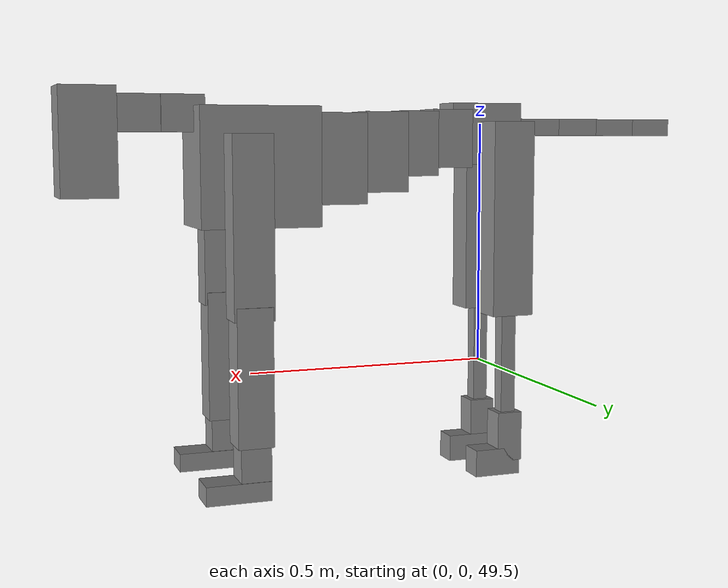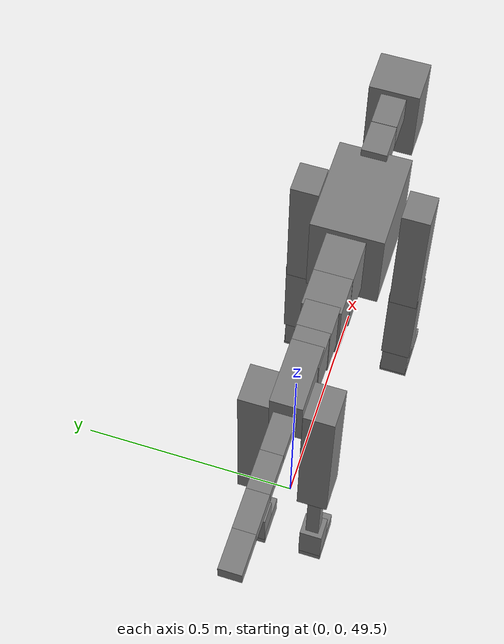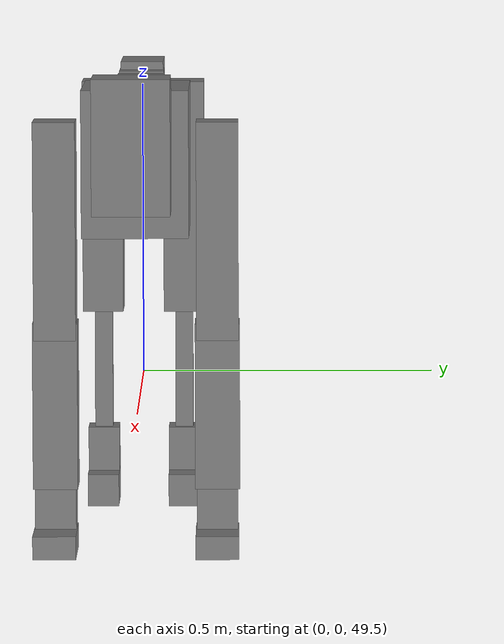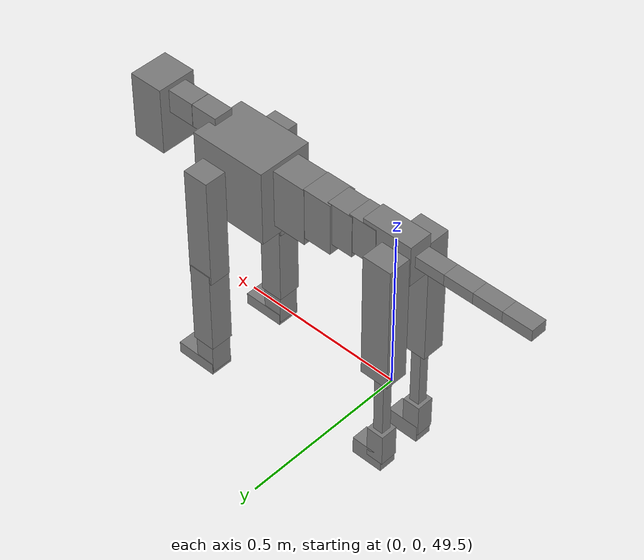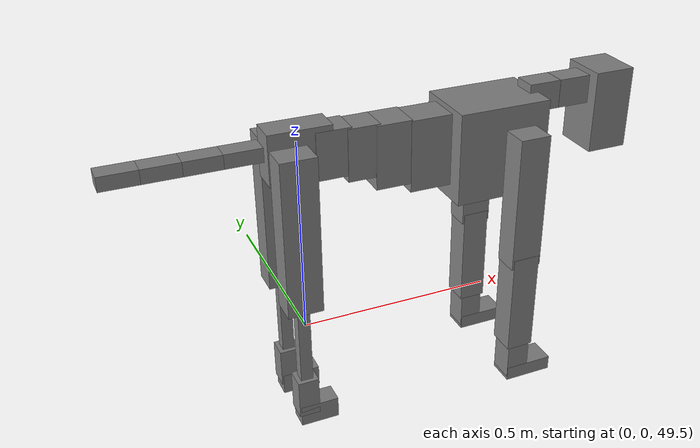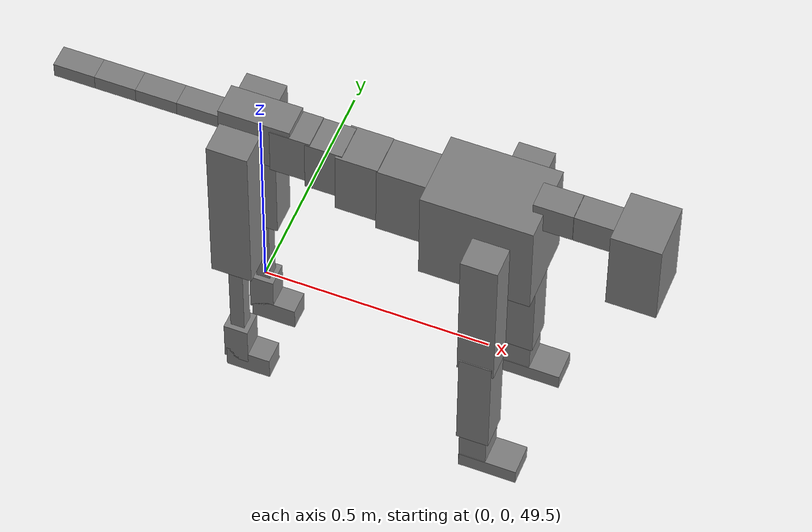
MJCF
<mujoco model="dog">

    <default>
        <joint armature="0.02" stiffness="1" damping="0.2" limited="true"/>
        <geom condim="3" friction="1 0.05 0.05" margin="0.01"/>
        <motor ctrllimited="true" ctrlrange="-1.0 1.0" forcelimited="true" gear="50"/>
    </default>

    <compiler inertiafromgeom="true" angle="radian"/>

    <option timestep="0.016" iterations="50" tolerance="1e-10" solver="Newton" jacobian="dense" cone="pyramidal"/>

    <size nconmax="20000" njmax="60000" nstack="5000000"/>
    <visual>
        <map force="0.1" zfar="30"/>
        <rgba haze="0.15 0.25 0.35 1"/>
        <quality shadowsize="2048"/>
        <global offwidth="800" offheight="800"/>
    </visual>

    <asset>
        <texture type="skybox" builtin="gradient" rgb1="0.3 0.5 0.7" rgb2="0 0 0" width="512" height="512"/>
        <texture name="texplane" type="2d" builtin="checker" rgb1=".2 .3 .4" rgb2=".1 0.15 0.2" width="512" height="512"
                 mark="cross" markrgb=".8 .8 .8"/>
        <texture name="texgeom" type="cube" builtin="flat" mark="cross" width="127" height="1278" rgb1="0.8 0.6 0.4"
                 rgb2="0.8 0.6 0.4" markrgb="1 1 1" random="0.01"/>

        <material name="matplane" reflectance="0.3" texture="texplane" texrepeat="1 1" texuniform="true"/>
        <material name="matgeom" texture="texgeom" texuniform="true" rgba="0.8 0.6 .4 1"/>
    </asset>

    <worldbody>
        <geom name="floor" pos="0 0 0" size="0 0 .25" type="plane" material="matplane" condim="3"/>

        <light directional="false" diffuse=".2 .2 .2" specular="0 0 0" pos="0 0 5" dir="0 0 -1" castshadow="false"/>
        <light mode="targetbodycom" target="torso" directional="false" diffuse=".8 .8 .8" specular="0.3 0.3 0.3"
               pos="0 0 4.0" dir="0 0 -1"/>

        <body name="root" pos="0 0 50">
            <freejoint name="root_1"/>
            <geom type="box" pos="0 0 -0.02" size="0.0774  0.0358  0.063" density="2030"/>

            <body name="spine1" pos="0.054 0 0">
                <joint name="spine1_y" axis="0 1 0" range="0 0.7" limited="true"/>
                <geom type="box" pos="0.02375 0 -0.03" size="0.04375  0.0375  0.05985" density="2030"/>

                <body name="spine2" pos="0.0612 0 0">
                    <joint name="spine2_y" axis="0 1 0" range="-0.15 0.15" limited="true"/>
                    <geom type="box" pos="0.03555  0  -0.04" size="0.04055  0.039  0.06615" density="2030"/>

                    <body name="spine3" pos="0.0730 0 0">
                        <joint name="spine3_y" axis="0 1 0" range="-0.15 0.15" limited="true"/>
                        <geom type="box" pos="0.03555  0  -0.057" size="0.04555  0.0445  0.081" density="2030"/>

                        <body name="spine4" pos="0.0780 0 0">
                            <joint name="spine4_y" axis="0 1 0" range="-0.15 0.15" limited="true"/>
                            <geom type="box" pos="0.05265  0  -0.07" size="0.05265  0.045  0.09135" density="2030"/>

                            <body name="torso" pos="0.1082 0 0">
                                <joint name="torso_y" axis="0 1 0" range="-0.15 0.15" limited="true"/>
                                <geom type="box" pos="0.11925  0  -0.085" size="0.11925  0.085  0.11745"
                                      density="2030"/>

                                <body name="neck1" pos="0.2160  0   0.0180">
                                    <joint name="neck1_y" axis="0 1 0" range="-1.2  -1" limited="true"/>
                                    <geom type="box" pos="0.0423  0  0" size="0.0423  0.03  0.036" density="2325"/>

                                    <body name="neck2" pos="0.0853  0  0">
                                        <joint name="neck2_y" axis="0 1 0" range="0.1  0" limited="true"/>
                                        <geom type="box" pos="0.0423  0  0" size="0.0423  0.03  0.036" density="2325"/>

                                        <body name="head" pos="0.0853  0  0">
                                            <joint name="head_y" axis="0 1 0" range="-0.3  -0.2" limited="true"/>
                                            <geom type="box" pos="0.0531  0  -0.055" size="0.0531  0.06  0.1044"
                                                  density="4030"/>

                                        </body>
                                    </body>
                                </body>

                                <body name="front_shoulder" pos="0.156  0   -0.0480">
                                    <joint name="front_shoulder_y" axis="0 1 0" range="-1 1.5" limited="true"/>
                                    <geom type="box" pos="0 0.13 -0.1481" size="0.0394  0.0337  0.1748" density="1158"/>
                                    <geom type="box" pos="0 -0.13 -0.1481" size="0.0394  0.0337  0.1748"
                                          density="1158"/>

                                    <body name="front_elbow" pos="0  0  -0.2963">
                                        <joint name="front_elbow_y" axis="0 1 0" range="-2 0" limited="true"/>
                                        <geom type="box" pos="0 0.13 -0.1338" size="0.0351  0.0359  0.1338"
                                              density="1081"/>
                                        <geom type="box" pos="0 -0.13 -0.1338" size="0.0351  0.0359  0.1338"
                                              density="1081"/>

                                        <body name="front_wrist" pos="0  0  -0.2676">
                                            <joint name="front_wrist_y" axis="0 1 0" range="-0.2 0" limited="true"/>
                                            <geom type="box" pos="0 0.13 -0.0403" size="0.0297  0.0330  0.0534"
                                                  density="1664"/>
                                            <geom type="box" pos="0 -0.13 -0.0403" size="0.0297  0.0330  0.0534"
                                                  density="1664"/>

                                            <body name="front_finger_end" pos="0  0  -0.0805">
                                                <joint name="front_finger_y" axis="0 1 0" range="-0.4 1"
                                                       limited="true"/>
                                                <geom type="box" pos="0.0345  0.13  -0.0038"
                                                      size="0.0633  0.0345  0.0188" density="1515"/>
                                                <geom type="box" pos="0.0345  -0.13  -0.0038"
                                                      size="0.0633  0.0345  0.0188" density="1515"/>

                                            </body>

                                        </body>
                                    </body>
                                </body>

                            </body>
                        </body>
                    </body>
                </body>
            </body>

            <body name="back_hip" pos="-0.03 0 -0.018">
                <joint name="back_hip_y" axis="0 1 0" range="-1.5 0.3" limited="true"/>
                <geom type="box" pos="0 0.07 -0.1767" size="0.0444  0.0348  0.1995" density="1154"/>
                <geom type="box" pos="0 -0.07 -0.1767" size="0.0444  0.0348  0.1995" density="1154"/>

                <body name="back_knee" pos="0  0  -0.3535">
                    <joint name="back_knee_y" axis="0 1 0" range="0 2.8" limited="true"/>
                    <geom type="box" pos="0 0.07 -0.1194" size="0.0156  0.0154  0.1350" density="1227"/>
                    <geom type="box" pos="0 -0.07 -0.1194" size="0.0156  0.0154  0.1350" density="1227"/>

                    <body name="back_ankle" pos="0  0  -0.2389">
                        <joint name="back_ankle_y" axis="0 1 0" range="-2.2 0" limited="true"/>
                        <geom type="box" pos="0 0.07 -0.0398" size="0.0267  0.0267  0.0510" density="1284"/>
                        <geom type="box" pos="0 -0.07 -0.0398" size="0.0267  0.0267  0.0510" density="1284"/>

                        <body name="back_toe_end" pos="0  0  -0.0795">
                            <joint name="back_toe_y" axis="0 1 0" range="-0.4 1" limited="true"/>
                            <geom type="box" pos="0.0267  0.07  -0.0128" size="0.0490  0.0267  0.0278" density="1515"/>
                            <geom type="box" pos="0.0267  -0.07  -0.0128" size="0.0490  0.0267  0.0278" density="1515"/>

                        </body>
                    </body>
                </body>
            </body>

            <body name="tail1" pos="-0.074 0 -0.006">
                <joint name="tail1_y" axis="0 1 0" range="-0.2 0.2" limited="true"/>
                <geom type="box" pos="-0.0536  0  0" size="0.045  0.025  0.0175" density="1587"/>

                <body name="tail2" pos="-0.09 0 0">
                    <joint name="tail2_y" axis="0 1 0" range="-0.2 0.2" limited="true"/>
                    <geom type="box" pos="-0.0536  0  0" size="0.045  0.025  0.0175" density="1587"/>

                    <body name="tail3" pos="-0.09 0 0">
                        <joint name="tail3_y" axis="0 1 0" range="-0.2 0.2" limited="true"/>
                        <geom type="box" pos="-0.0536  0  0" size="0.045  0.025  0.0175" density="1587"/>

                        <body name="tail4" pos="-0.09 0 0">
                            <joint name="tail4_y" axis="0 1 0" range="-0.2 0.2" limited="true"/>
                            <geom type="box" pos="-0.0536  0  0" size="0.045  0.025  0.0175" density="1587"/>

                        </body>
                    </body>
                </body>
            </body>
        </body>
    </worldbody>

    <actuator>
        <motor joint="spine1_y" forcerange="-150 150     "/>
        <motor joint="spine2_y" forcerange="-150 150     "/>
        <motor joint="spine3_y" forcerange="-150 150     "/>
        <motor joint="spine4_y" forcerange="-150 150     "/>
        <motor joint="torso_y" forcerange="-150 150     "/>
        <motor joint="neck1_y" forcerange="-100 100       "/>
        <motor joint="neck2_y" forcerange="-100 100       "/>
        <motor joint="head_y" forcerange="-150 150       "/>
        <motor joint="front_shoulder_y" forcerange="-134.08 190.69"/>
        <motor joint="front_elbow_y" forcerange="-163.85 197.46"/>
        <motor joint="front_wrist_y" forcerange="-137.04 126.63"/>
        <motor joint="front_finger_y" forcerange="-44.82 99.36"/>
        <motor joint="back_hip_y" forcerange="-292.78 371.16"/>
        <motor joint="back_knee_y" forcerange="-201.01 223.03"/>
        <motor joint="back_angle_y" forcerange="-202.79 124.53"/>
        <motor joint="back_toe_y" forcerange="-108.58 25.07"/>
        <motor joint="tail1_y" forcerange="-50 50     "/>
        <motor joint="tail2_y" forcerange="-50 50     "/>
        <motor joint="tail3_y" forcerange="-50 50     "/>
        <motor joint="tail4_y" forcerange="-50 50     "/>
    </actuator>
</mujoco>
